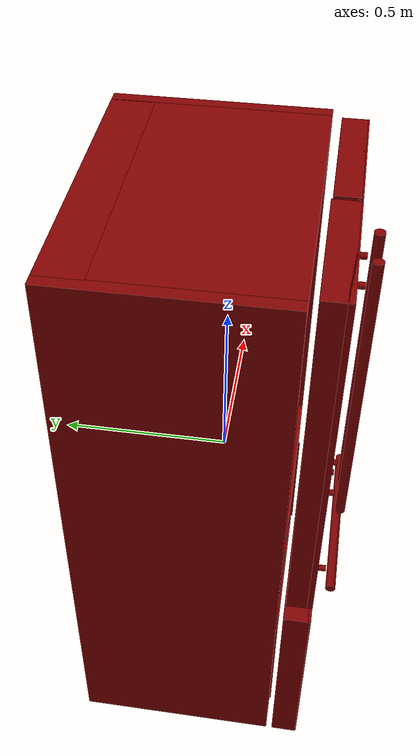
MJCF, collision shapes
<?xml version='1.0' encoding='UTF-8'?>
<mujoco model="model">
  <option timestep="0.002" gravity="0.0 0.0 -9.81"/>
  <compiler angle="radian"/>
  <asset>
    <mesh file="visuals/freezer0.obj" name="freezer0_vis"/>
    <mesh file="visuals/fridge_drawer0.obj" name="fridge_drawer0_vis"/>
    <mesh file="visuals/fridge_left_door.obj" name="fridge_left_door_vis"/>
    <mesh file="visuals/fridge_right_door.obj" name="fridge_right_door_vis"/>
    <mesh file="visuals/Body001.obj" name="Body001_vis"/>
    <mesh file="visuals/Body001_Clear.obj" name="Body001_Clear_vis"/>
    <texture file="visuals/T_BC001.png" name="Body001_material" type="2d"/>
    <material name="Body001_material" rgba="1 1 1 1.0" texture="Body001_material" shininess="2" specular="2"/>
    <texture file="visuals/T_BC001.png" name="freezer0_material" type="2d"/>
    <material name="freezer0_material" rgba="1 1 1 1.0" texture="freezer0_material" shininess="2" specular="2"/>
    <texture file="visuals/T_BC001.png" name="fridge_drawer0_material" type="2d"/>
    <material name="fridge_drawer0_material" rgba="1 1 1 1.0" texture="fridge_drawer0_material" shininess="0.7577263116836548" specular="0.3103448502657381"/>
    <texture file="visuals/T_BC001.png" name="fridge_left_door_material" type="2d"/>
    <material name="fridge_left_door_material" rgba="1 1 1 1.0" texture="fridge_left_door_material" shininess="2" specular="2"/>
    <texture file="visuals/T_BC001.png" name="fridge_right_door_material" type="2d"/>
    <material name="fridge_right_door_material" rgba="1 1 1 1.0" texture="fridge_right_door_material" shininess="2" specular="2"/>
    <material name="Body001_Clear_material" rgba="0.6760485172271729 0.8000229597091675 0.7606381177902222 0.27272725105285645" shininess="0.5" specular="0.3103448502657381"/>
  </asset>
  <default>
    <default class="visual">
      <geom conaffinity="0" contype="0" group="1" type="mesh"/>
    </default>
    <default class="collision">
      <geom group="0" rgba="0.5 0 0 0.5"/>
    </default>
    <default class="spawn">
      <geom group="0" rgba="1 1 1 0.5" contype="0" conaffinity="0"/>
      <site group="0" rgba="1 1 1 0.5"/>
    </default>
    <default class="region">
      <geom group="1" conaffinity="0" contype="0" rgba="0 1 0 0"/>
    </default>
  </default>
  <worldbody>
    <body>
      <body name="object">
        <geom mesh="Body001_vis" type="mesh" solimp="0.998 0.998 0.001" solref="0.001 1" friction="0.95 0.3 0.1" class="visual" material="Body001_material"/>
        <geom class="collision" type="box" pos="0.00244130 0.04467770 0.47924063" size="0.40693676471710205 0.20570765435695648 0.008224813267588615" quat="1.0 0.0 0.0 0.0"/>
        <geom class="collision" type="box" pos="0.00244130 0.04467770 0.13264118" size="0.40693676471710205 0.20570765435695648 0.008224813267588615" quat="1.0 0.0 0.0 0.0"/>
        <geom class="collision" type="box" pos="-0.43643510 0.08550413 -0.00073579" size="0.01859312132000923 0.3094015419483185 0.8944895267486572" quat="1.0 0.0 0.0 0.0"/>
        <geom class="collision" type="box" pos="0.43642050 0.08548879 -0.00040731" size="0.018579570576548576 0.3093862235546112 0.8941609859466553" quat="1.0 0.0 0.0 0.0"/>
        <geom class="collision" type="box" pos="-0.00138975 0.33245702 -0.00071217" size="0.419253945350647 0.062493860721588135 0.894465982913971" quat="1.0 0.0 0.0 0.0"/>
        <geom class="collision" type="box" pos="-0.00091293 0.08548879 0.86302954" size="0.4200219213962555 0.3093862235546112 0.030724193900823593" quat="1.0 0.0 0.0 0.0"/>
        <geom class="collision" type="box" pos="-0.00091293 0.08550692 -0.24774715" size="0.4200219213962555 0.3094043433666229 0.04806247353553772" quat="1.0 0.0 0.0 0.0"/>
        <geom class="collision" type="box" pos="-0.00091293 0.08546695 -0.86918718" size="0.4200219213962555 0.309364378452301 0.026062777265906334" quat="1.0 0.0 0.0 0.0"/>
        <body name="freezer0">
          <geom class="region" name="reg_freezer0" type="box" pos="-0.0006033000000000011 0.018661540000000004 -0.57097927" size="0.39270638999999996 0.21382617 0.19819109000000001"/>
          <joint axis="0.0 -1.0 0.0" pos="0.00000003 -0.06583229 -0.56924975" limited="true" name="freezer0_door_joint" range="0.0 0.4" type="slide" damping="1" frictionloss="1" armature=".01" stiffness="0.05"/>
          <geom mesh="freezer0_vis" type="mesh" solimp="0.998 0.998 0.001" solref="0.001 1" friction="0.95 0.3 0.1" class="visual" material="freezer0_material"/>
          <geom class="collision" type="cylinder" pos="-0.20717679 -0.33731227 -0.30073348" size="0.00958966463804245 0.01981106400489807" quat="0.7071067094802856 0.7071068286895752 0.0 0.0" name="freezer0_door_handle_1"/>
          <geom class="collision" type="cylinder" pos="0.20889451 -0.33731227 -0.30073348" size="0.00958966463804245 0.01981106400489807" quat="0.7071067094802856 0.7071068286895752 0.0 0.0" name="freezer0_door_handle_2"/>
          <geom class="collision" type="cylinder" pos="0.00054136 -0.37616433 -0.30049491" size="0.01512225717306137 0.2832430899143219" quat="0.7071068286895752 -0.0 0.7071067690849304 0.0" name="freezer0_door_handle_main"/>
          <geom class="collision" type="box" pos="0.00031409 -0.31415440 -0.57057822" size="0.45428305864334106 0.010988916270434856 0.3240372836589813" quat="1.0 0.0 0.0 0.0" name="freezer0_door_main"/>
          <geom class="collision" type="box" pos="0.00000012 -0.28266658 -0.57089525" size="0.455000102519989 0.03940330445766449 0.3243543207645416" quat="1.0 0.0 0.0 0.0"/>
          <geom class="collision" type="box" pos="0.40209508 0.00605657 -0.57578731" size="0.0012200025375932455 0.23485112190246582 0.20430701971054077" quat="1.0 0.0 0.0 0.0"/>
          <geom class="collision" type="box" pos="-0.40607324 0.00605657 -0.57578731" size="0.003635436063632369 0.23485112190246582 0.20430701971054077" quat="1.0 0.0 0.0 0.0"/>
          <geom class="collision" type="box" pos="0.00479245 0.24995583 -0.57578731" size="0.3954424262046814 0.002310782438144088 0.20430701971054077" quat="1.0 0.0 0.0 0.0"/>
          <geom class="collision" type="box" pos="0.00479245 0.02202710 -0.78704077" size="0.3954424262046814 0.23100967705249786 0.012409958057105541" quat="1.0 0.0 0.0 0.0"/>
        </body>
        <body name="fridge_drawer0">
          <geom class="region" name="reg_fridge_drawer0" type="box" pos="0.004019439999999985 0.05347409499999999 -0.05750791" size="0.29088141 0.171442985 0.10435024000000001"/>
          <joint axis="0.0 -1.0 0.0" pos="0.00343926 0.02418251 -0.06103485" limited="true" name="fridge_drawer0_joint" range="0.0 0.4" type="slide" damping="1" frictionloss="1" armature=".01" stiffness="0.05"/>
          <geom mesh="fridge_drawer0_vis" type="mesh" solimp="0.998 0.998 0.001" solref="0.001 1" friction="0.95 0.3 0.1" class="visual" material="fridge_drawer0_material"/>
          <geom class="collision" type="box" pos="0.31745097 0.01149486 -0.05984484" size="0.01572214625775814 0.21937870979309082 0.11382616311311722" quat="1.0 0.0 0.0 0.0"/>
          <geom class="collision" type="box" pos="-0.30874649 0.01149486 -0.05984902" size="0.01572214625775814 0.21937870979309082 0.1138303354382515" quat="1.0 0.0 0.0 0.0"/>
          <geom class="collision" type="box" pos="0.00354372 0.01149486 -0.17100862" size="0.2995295226573944 0.21938344836235046 0.002856377512216568" quat="1.0 0.0 0.0 0.0"/>
          <geom class="collision" type="box" pos="0.00354372 -0.19068517 -0.08423010" size="0.2995370924472809 0.017198646441102028 0.08452503383159637" quat="1.0 0.0 0.0 0.0"/>
          <geom class="collision" type="box" pos="0.00441118 0.23865519 -0.06112564" size="0.3274199366569519 0.00832795724272728 0.11302142590284348" quat="1.0 0.0 0.0 0.0"/>
          <geom class="collision" type="box" pos="0.00320474 -0.15026397 0.04171962" size="0.3023030757904053 0.025498157367110252 0.011790852062404156" quat="1.0 0.0 0.0 0.0"/>
        </body>
        <body name="fridge_left_door">
          <joint axis="0.0 0.0 -1.0" pos="-0.40531173 -0.28519540 0.29310042" limited="true" name="fridge_left_door_joint" range="0.0 1.5707963267948966" type="hinge" damping="1" frictionloss="1" armature=".01" stiffness="0.05"/>
          <geom mesh="fridge_left_door_vis" type="mesh" solimp="0.998 0.998 0.001" solref="0.001 1" friction="0.95 0.3 0.1" class="visual" material="fridge_left_door_material"/>
          <geom class="collision" type="box" pos="-0.21050665 -0.31717561 0.33133805" size="0.204952210187912 0.00818533543497324 0.5639119744300842" quat="1.0 0.0 0.0 0.0" name="fridge_left_door_main"/>
          <geom class="collision" type="cylinder" pos="-0.06040616 -0.33731227 0.68688142" size="0.00958966463804245 0.01981106400489807" quat="0.7071067094802856 0.7071068286895752 0.0 0.0" name="fridge_left_door_handle_1"/>
          <geom class="collision" type="cylinder" pos="-0.06040616 -0.33731227 -0.10662180" size="0.00958966463804245 0.01981106400489807" quat="0.7071067094802856 0.7071068286895752 0.0 0.0" name="fridge_left_door_handle_2"/>
          <geom class="collision" type="cylinder" pos="-0.06059455 -0.38077806 0.29052567" size="0.015450036153197289 0.47307562828063965" quat="1.0 0.0 0.0 0.0" name="fridge_left_door_handle_main"/>
          <geom class="collision" type="box" pos="-0.21041995 -0.28401230 0.33133805" size="0.20486551523208618 0.03745518997311592 0.5639119744300842" quat="1.0 0.0 0.0 0.0"/>
        </body>
        <body name="fridge_right_door">
          <joint axis="0.0 0.0 1.0" pos="0.41055948 -0.28442077 0.29310042" limited="true" name="fridge_right_door_joint" range="0.0 1.5707963267948966" type="hinge" damping="1" frictionloss="1" armature=".01" stiffness="0.05"/>
          <geom mesh="fridge_right_door_vis" type="mesh" solimp="0.998 0.998 0.001" solref="0.001 1" friction="0.95 0.3 0.1" class="visual" material="fridge_right_door_material"/>
          <geom class="collision" type="box" pos="0.20889558 -0.31755991 0.33133805" size="0.1988135576248169 0.007898606359958649 0.5639119744300842" quat="1.0 0.0 0.0 0.0" name="fridge_right_door_main"/>
          <geom class="collision" type="cylinder" pos="0.07084915 -0.33731227 -0.10662180" size="0.00958966463804245 0.01981106400489807" quat="0.7071067094802856 0.7071068286895752 0.0 0.0" name="fridge_right_door_handle_1"/>
          <geom class="collision" type="cylinder" pos="0.07084915 -0.33731227 0.68688142" size="0.00958966463804245 0.01981106400489807" quat="0.7071067094802856 0.7071068286895752 0.0 0.0" name="fridge_right_door_handle_2"/>
          <geom class="collision" type="cylinder" pos="0.07070101 -0.38039930 0.29052567" size="0.015450036153197289 0.47307562828063965" quat="1.0 0.0 0.0 0.0" name="fridge_right_door_handle_main"/>
          <geom class="collision" type="box" pos="0.20880888 -0.28596659 0.33133805" size="0.1987268626689911 0.0355009026825428 0.5639119744300842" quat="1.0 0.0 0.0 0.0"/>
        </body>
        <body name="Body001_Clear">
          <geom mesh="Body001_Clear_vis" type="mesh" solimp="0.998 0.998 0.001" solref="0.001 1" friction="0.95 0.3 0.1" class="visual" material="Body001_Clear_material"/>
          <geom class="collision" type="box" pos="0.00244130 0.04467770 0.47924063" size="0.40693676471710205 0.20570765435695648 0.008224813267588615" quat="1.0 0.0 0.0 0.0"/>
          <geom class="collision" type="box" pos="0.00244130 0.04467770 0.13264118" size="0.40693676471710205 0.20570765435695648 0.008224813267588615" quat="1.0 0.0 0.0 0.0"/>
        </body>
        <geom class="region" name="reg_fridge_shelf0" type="box" pos="0.0025017999999999985 0.04465746000000001 0.30671411" size="0.40800929 0.20663348 0.15897628000000003"/>
        <geom class="region" name="reg_fridge_shelf1" type="box" pos="0.0025017999999999985 0.04465746000000001 0.6605898450000001" size="0.40800929 0.20663348 0.165372715"/>
        <geom class="region" name="reg_main" type="box" pos="7.850500000000649e-05 0.033385499999999985 0.0" size="0.456714555 0.36252576999999997 0.89624996"/>
      </body>
    </body>
  </worldbody>
  <actuator>
    <motor name="freezer0_door_joint_actuator" joint="freezer0_door_joint" gear="50"/>
    <motor name="fridge_drawer0_joint_actuator" joint="fridge_drawer0_joint" gear="50"/>
    <motor name="fridge_left_door_joint_actuator" joint="fridge_left_door_joint" gear="50"/>
    <motor name="fridge_right_door_joint_actuator" joint="fridge_right_door_joint" gear="50"/>
  </actuator>
</mujoco>
